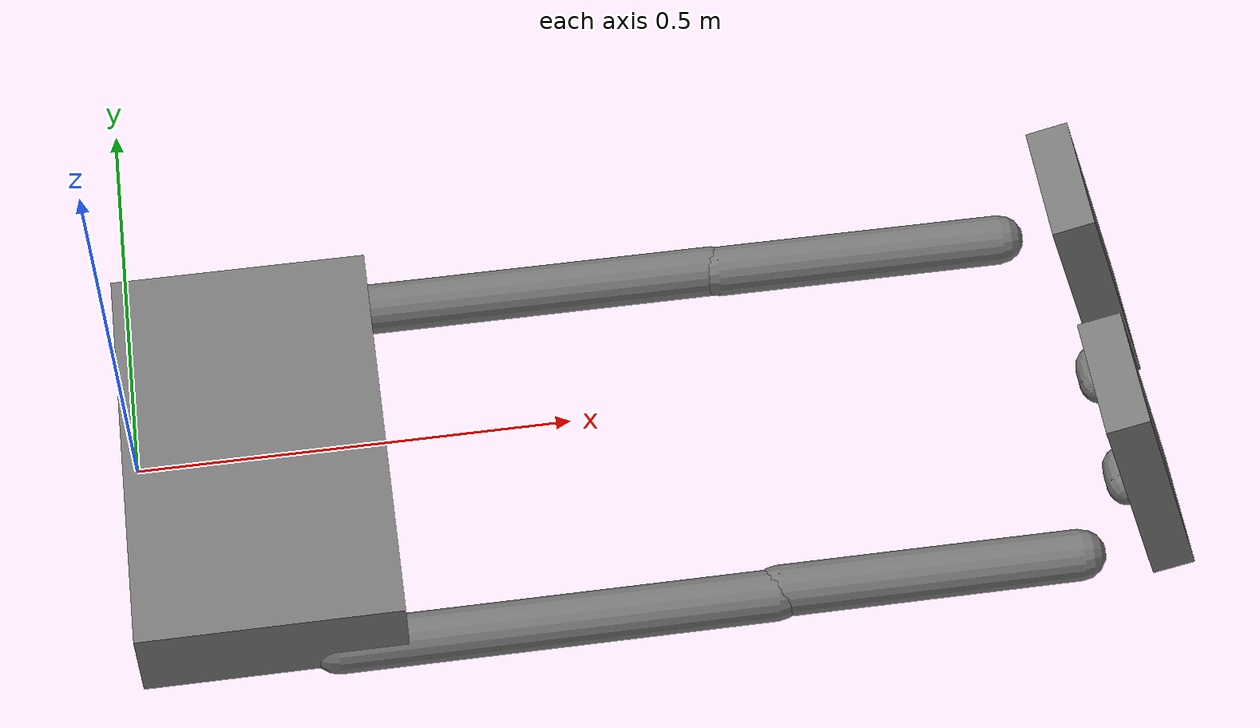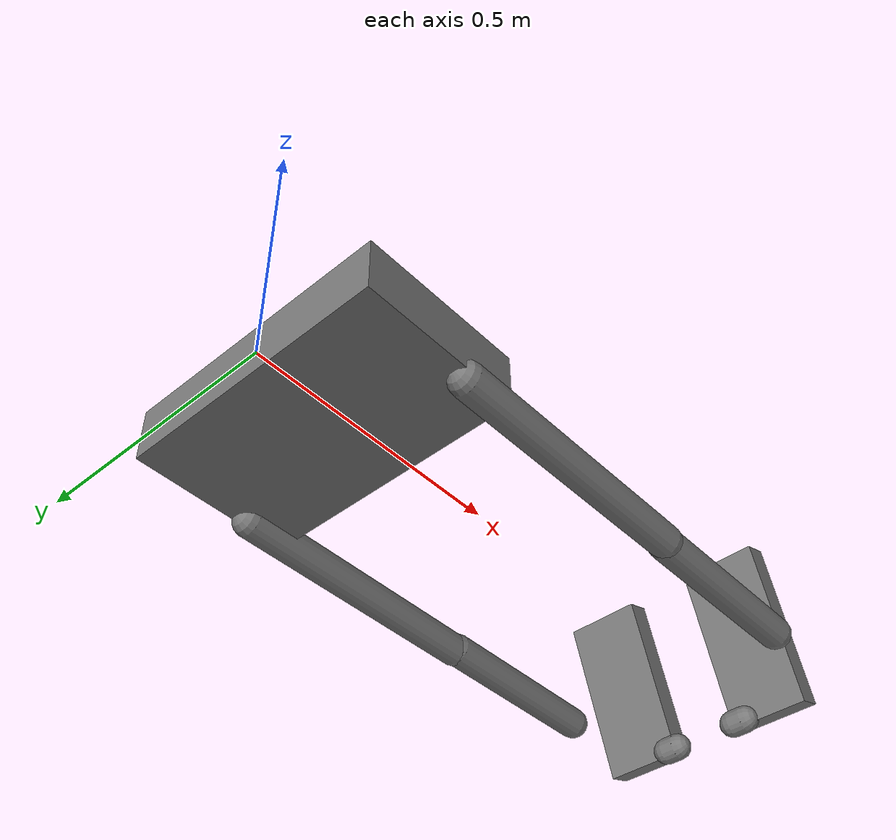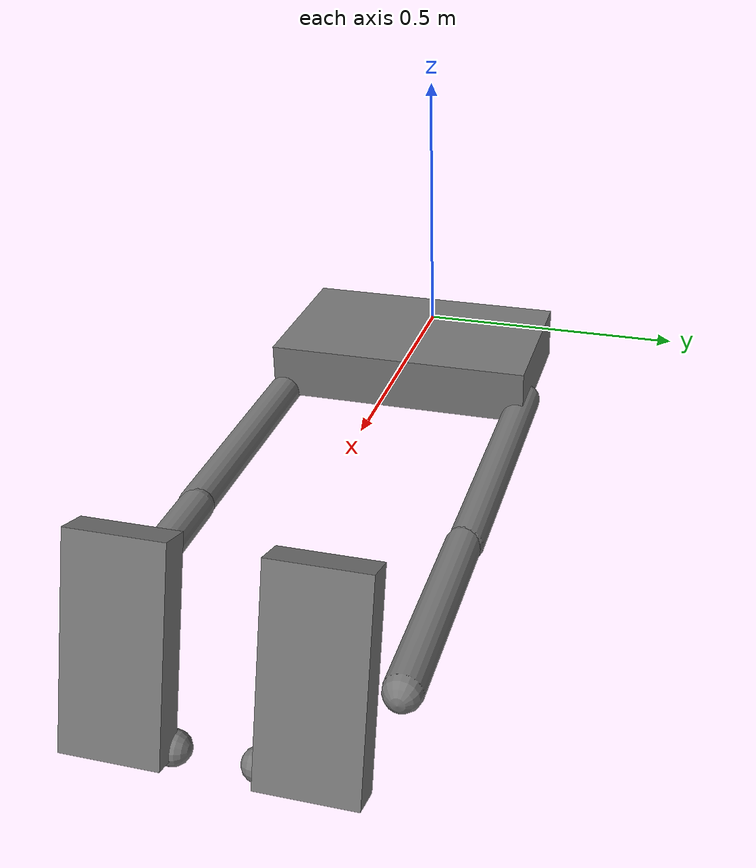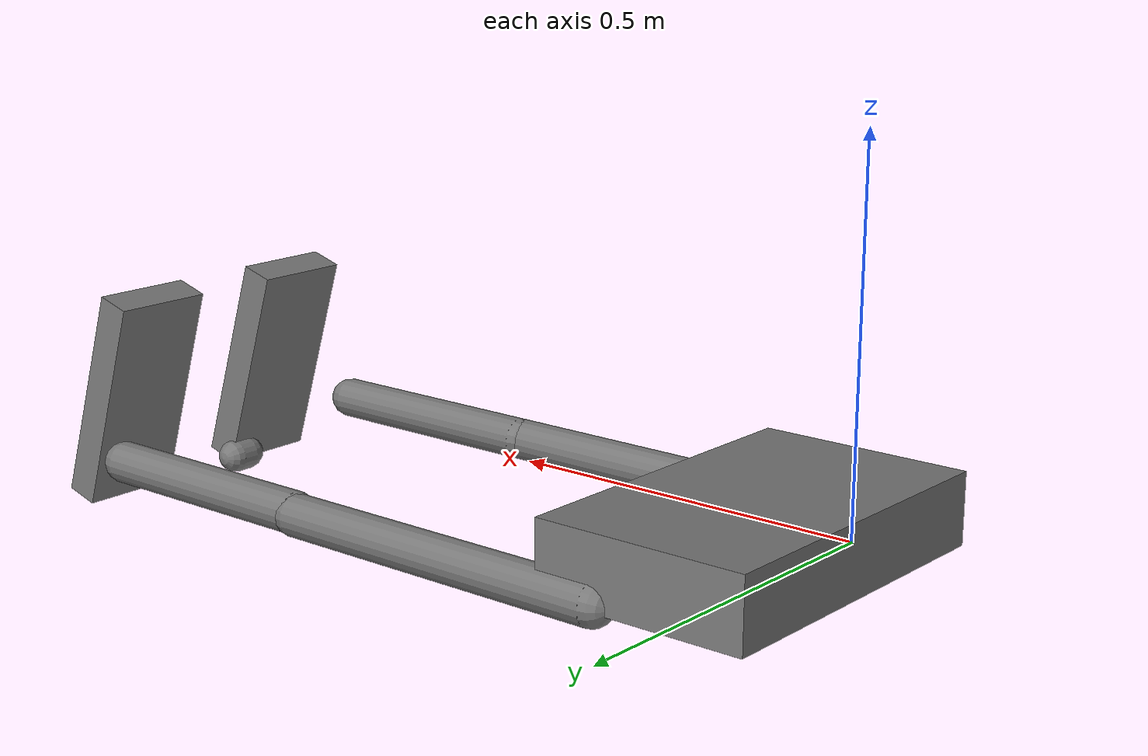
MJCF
<mujoco model="KF_NJIT_Rehab_Exo">
  <compiler angle="radian"/>

  <worldbody>
    <body name="exo_pelvis" pos="0 0 0" quat="0.707 0.707 0 0">

      <freejoint/>
      <site name="imu"/>

      <inertial pos="0.164969 -0.016465 -0.00031201" mass="3.40529" diaginertia="0.108005 0.140273 0.0409718"/>
      <geom size="0.15 0.05 0.25" pos="0.134969 -0.016465 -0.00031201" type="box" rgba="0.47 0.47 0.47 1"/>

      <body name="r_exo_femur" pos="0.25 -0.06 0.21" quat="0.707107 0 0 0.707107">
        <inertial pos="-0.00012287 -0.205637 0.0391034" mass="2.77725" diaginertia="0.03787 0.00419 0.03533"/>
        <joint name="r_exo_femur" axis="0 0 1" range="-1.309 1.309"/>
        <geom size="0.03 0.25" pos="-0.00012287 -0.205637 0.0201034" quat="0.707107 0.707107 0 0" type="capsule" rgba="0.47 0.47 0.47 1"/>

        <body name="r_exo_tibia" pos="0 -0.41 0">
          <inertial pos="0.00130324 -0.0640757 0.0163233" mass="0.60426" diaginertia="0.00549 0.00033 0.00532"/>
          <joint name="r_exo_tibia" axis="0 0 1" range="-2.094 0"/>
          <geom size="0.03 0.175" pos="0.00130324 -0.224076 0.0163233" quat="0.707107 0.707107 0 0" type="capsule" rgba="0.47 0.47 0.47 1"/>

          <body name="r_ankle_coupling" pos="0 -0.25 0">
             <body name="r_ankle_coupling_joint" pos="0 -0.129 0">
                <inertial pos="0.027 -0.021 -0.018" mass="0.194" diaginertia="0.0002 0.0008 0.0008"/>
                <joint name="r_ankle_coupling" axis="0 0 1" range="-0.698 0.261"/>
                <geom size="0.0254 0.0127" pos="-0.078 -0.118 -0.135" type="capsule" rgba="0.47 0.47 0.47 1"/>

                <body name="r_foot" pos="0.11 0.001 -0.07" quat="0.989 0 0 0.145">
                  <inertial pos="-0.064 -0.086 0.006" mass="1.39" diaginertia="0.004 0.016 0.016"/>
                  <joint name="r_foot" axis="1 0 0" range="-0.26 0.26"/>
                  <geom name="r_foot" size="0.16 0.025 0.075" pos="-0.064 -0.086 -0.006" type="box" rgba="0.47 0.47 0.47 1"/>
                  <site name="r_foot" size="0.16 0.025 0.075" pos="-0.064 -0.086 -0.006" type="box"/>
                </body>
             </body>
          </body>
        </body>
      </body>

      <body name="l_exo_femur" pos="0.25 -0.06 -0.21" quat="0.707107 0 0 0.707107">
        <inertial pos="-0.00012287 -0.205637 -0.0391034" mass="2.77725" diaginertia="0.03787 0.00419 0.03533"/>
        <joint name="l_exo_femur" axis="0 0 1" range="-1.309 1.309"/>
        <geom size="0.03 0.25" pos="-0.00012287 -0.205637 -0.0291034" quat="0.707107 0.707107 0 0" type="capsule" rgba="0.47 0.47 0.47 1"/>

        <body name="l_exo_tibia" pos="0 -0.41 0">
          <inertial pos="0.00130324 -0.0640757 -0.0163233" mass="0.60426" diaginertia="0.00549 0.00033 0.00532"/>
          <joint name="l_exo_tibia" axis="0 0 1" range="-2.094 0"/>
          <geom size="0.03 0.175" pos="0.00130324 -0.224076 -0.0263233" quat="0.707107 0.707107 0 0" type="capsule" rgba="0.47 0.47 0.47 1"/>

          <body name="l_ankle_coupling" pos="0 -0.25 0">
             <body name="l_ankle_coupling_joint" pos="0 -0.129 0">
                <inertial pos="0.027 -0.021 0.018" mass="0.194" diaginertia="0.0002 0.0008 0.0008"/>
                <joint name="l_ankle_coupling" axis="0 0 1" range="-0.698 0.261"/>
                <geom size="0.0254 0.0127" pos="-0.078 -0.118 0.135" type="capsule" rgba="0.47 0.47 0.47 1"/>

                <body name="l_foot" pos="0.11 0.001 0.07" quat="0.989 0 0 0.145">
                  <inertial pos="-0.064 -0.086 -0.006" mass="1.39" diaginertia="0.004 0.016 0.016"/>
                  <joint name="l_foot" axis="-1 0 0" range="-0.26 0.26"/>
                  <geom name="l_foot" size="0.16 0.025 0.075" pos="-0.064 -0.086 -0.006" type="box" rgba="0.47 0.47 0.47 1"/>
                  <site name="l_foot" size="0.16 0.025 0.075" pos="-0.064 -0.086 -0.006" type="box"/>
                </body>
             </body>
          </body>
        </body>
      </body>

    </body>
  </worldbody>

  <actuator>
    <motor name="r_exo_femur" joint="r_exo_femur" gear="1" ctrllimited="true" ctrlrange="-100 100"/>
    <motor name="r_exo_tibia" joint="r_exo_tibia" gear="1" ctrllimited="true" ctrlrange="-100 100"/>
    <motor name="r_ankle_coupling" joint="r_ankle_coupling" gear="1" ctrllimited="true" ctrlrange="-100 100"/>
    <motor name="r_foot" joint="r_foot" gear="1" ctrllimited="true" ctrlrange="-100 100"/>
    <motor name="l_exo_femur" joint="l_exo_femur" gear="1" ctrllimited="true" ctrlrange="-100 100"/>
    <motor name="l_exo_tibia" joint="l_exo_tibia" gear="1" ctrllimited="true" ctrlrange="-100 100"/>
    <motor name="l_ankle_coupling" joint="l_ankle_coupling" gear="1" ctrllimited="true" ctrlrange="-100 100"/>
    <motor name="l_foot" joint="l_foot" gear="1" ctrllimited="true" ctrlrange="-100 100"/>
  </actuator>

  <sensor>
    <gyro site="imu" name="gyro"/>
    <velocimeter site="imu" name="local_linvel"/>
    <accelerometer site="imu" name="accelerometer"/>
    <framezaxis objtype="site" objname="imu" name="upvector"/>
    <framelinvel objtype="site" objname="imu" name="global_linvel"/>
    <frameangvel objtype="site" objname="imu" name="global_angvel"/>
    <framelinvel objtype="site" objname="l_foot" name="l_foot_global_linvel"/>
    <framelinvel objtype="site" objname="r_foot" name="r_foot_global_linvel"/>
  </sensor>
</mujoco>
